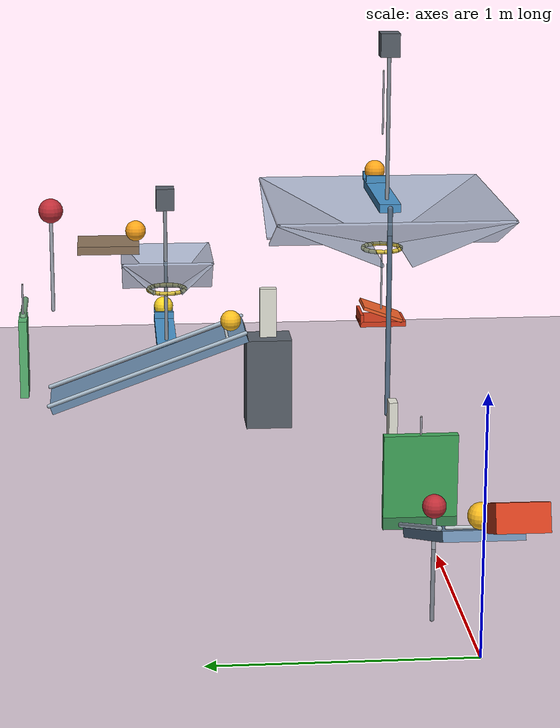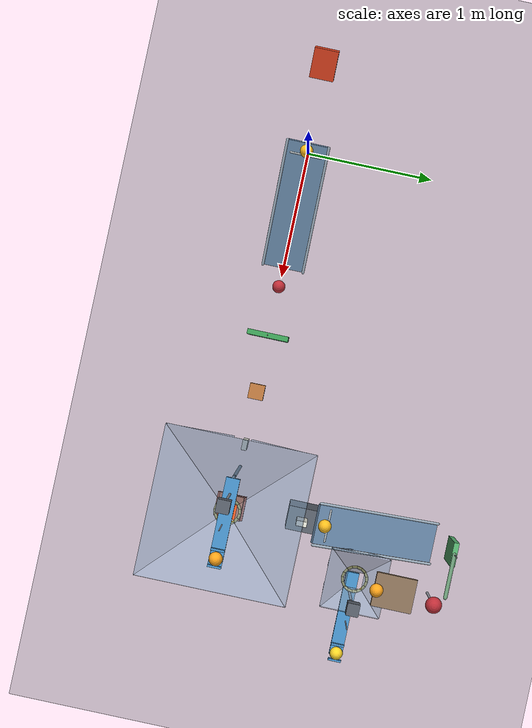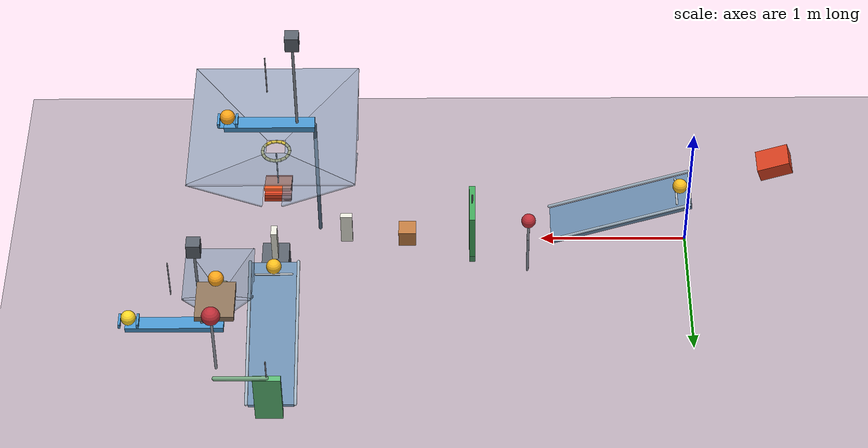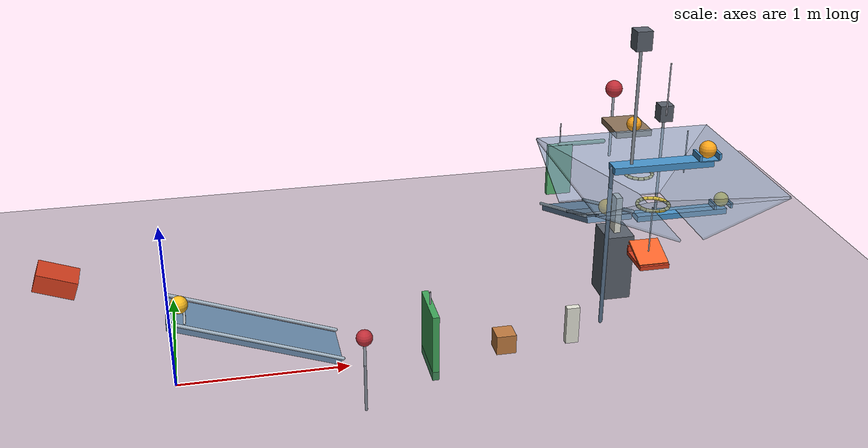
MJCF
<mujoco model="passive_chain_reaction_revised">
  <compiler angle="degree" autolimits="true"/>
  <option timestep="0.002" gravity="0 0 -9.81" integrator="implicitfast" solver="Newton" iterations="100" cone="elliptic"/>
  <size njmax="4000" nconmax="1000"/>
  <visual>
    <global azimuth="120" elevation="-25"/>
    <headlight ambient="0.35 0.35 0.35" diffuse="0.7 0.7 0.7" specular="0.2 0.2 0.2"/>
  </visual>

  <!-- All initial generalized velocities are zero. -->
  <!-- Contact damping approximates restitution 0.05, rather than imposing an exact coefficient. -->
  <!-- Hinged mechanisms use collision bit 2 and do not collide with the floor. -->
  <!-- Passive compressed assist springs have zero driving moment or axial force at the start. -->

  <worldbody>
    <light name="main_light" pos="2 -3 6" dir="0 0.3 -1" directional="true"/>
    <camera name="overview" pos="2 -6 4" xyaxes="1 0 0 0 0.447214 0.894427" fovy="48"/>
    <geom name="floor" type="plane" size="6 6 0.1" friction="0.68 0.005 0.001" condim="6" solref="0.006 0.6901" contype="1" conaffinity="1" rgba="0.22 0.25 0.28 1"/>

    <!-- Downhill axial slide supplies gravitational work in addition to the specified spring. -->
    <body name="cart1" pos="-0.556111 0 0.747637" quat="0.984807753 0 0.173648178 0">
      <joint name="cart1_slide" type="slide" axis="1 0 0" damping="0.20" stiffness="18" springref="0.20" range="0 0.55" solreflimit="0.006 1"/>
      <geom name="cart1_box" type="box" size="0.11 0.09 0.05" mass="0.50" friction="0.68 0.005 0.001" condim="6" solref="0.006 0.6901" contype="3" conaffinity="3" rgba="0.85 0.25 0.12 1"/>
    </body>

    <body name="ball1" pos="0.064086 0 0.521904">
      <freejoint name="ball1_free"/>
      <geom name="ball1_sphere" type="sphere" size="0.05" mass="0.20" friction="0.68 0.005 0.001" condim="6" solref="0.006 0.6901" contype="3" conaffinity="3" rgba="1 0.75 0.12 1"/>
    </body>

    <!-- Top endpoints: (0,0,0.492020) and (0.939693,0,0.150000). -->
    <body name="ramp1" pos="0.463006 0 0.302216" quat="0.984807753 0 0.173648178 0">
      <geom name="ramp1_deck" type="box" size="0.50 0.15 0.02" friction="0.68 0.005 0.001" condim="6" solref="0.006 0.6901" contype="1" conaffinity="1" rgba="0.42 0.55 0.68 1"/>
      <geom name="ramp1_left_rail" type="capsule" fromto="-0.50 -0.16 0.03 0.50 -0.16 0.03" size="0.01" friction="0.68 0.005 0.001" condim="6" solref="0.006 0.6901" contype="1" conaffinity="1" rgba="0.65 0.72 0.78 1"/>
      <geom name="ramp1_right_rail" type="capsule" fromto="-0.50 0.16 0.03 0.50 0.16 0.03" size="0.01" friction="0.68 0.005 0.001" condim="6" solref="0.006 0.6901" contype="1" conaffinity="1" rgba="0.65 0.72 0.78 1"/>
    </body>

    <!-- The retaining bar can withdraw into the deck under impact. -->
    <body name="ball1_release_gate" pos="0.087992 0 0.470635" quat="0.984807753 0 0.173648178 0">
      <joint name="ball1_release_gate_slide" type="slide" axis="0 0 -1" damping="0.20" stiffness="40" springref="-0.05" range="0 0.04" solreflimit="0.006 1"/>
      <geom name="ball1_release_gate_bar" type="capsule" fromto="0 -0.12 0 0 0.12 0" size="0.007" mass="0.02" friction="0.68 0.005 0.001" condim="6" solref="0.006 0.6901" contype="2" conaffinity="2" rgba="0.75 0.78 0.80 1"/>
    </body>

    <body name="pendulum1" pos="1.089693 0 -0.32">
      <joint name="pendulum1_hinge" type="hinge" axis="0 1 0" damping="0.04" frictionloss="0.001" range="0 40" solreflimit="0.006 1"/>
      <geom name="pendulum1_rod" type="capsule" fromto="0 0 0 0 0 0.50" size="0.009" mass="0.05" friction="0.68 0.005 0.001" condim="6" solref="0.006 0.6901" contype="2" conaffinity="2" rgba="0.65 0.67 0.72 1"/>
      <geom name="pendulum1_bob" type="sphere" pos="0 0 0.50" size="0.05" mass="0.30" friction="0.68 0.005 0.001" condim="6" solref="0.006 0.6901" contype="2" conaffinity="2" rgba="0.75 0.18 0.22 1"/>
    </body>

    <body name="door1" pos="1.48 0 -0.06">
      <joint name="door1_hinge" type="hinge" axis="0 1 0" damping="0.04" frictionloss="0.01" range="0 70" solreflimit="0.006 1"/>
      <geom name="door1_panel" type="box" pos="0 0 0.21" size="0.02 0.16 0.21" mass="0.45" friction="0.68 0.005 0.001" condim="6" solref="0.006 0.6901" contype="2" conaffinity="2" rgba="0.25 0.65 0.35 1"/>
      <site name="door1_spring_attachment" pos="0 0 0.20" size="0.004" rgba="0.9 0.9 0.9 1"/>
    </body>

    <body name="door1_spring_anchor" pos="1.48 0 0.44">
      <site name="door1_spring_fixed" pos="0 0 0" size="0.004" rgba="0.9 0.9 0.9 1"/>
    </body>

    <body name="block1" pos="1.93 0 0.06">
      <freejoint name="block1_free"/>
      <geom name="block1_cube" type="box" size="0.06 0.06 0.06" mass="0.35" friction="0.68 0.005 0.001" condim="6" solref="0.006 0.6901" contype="3" conaffinity="3" rgba="0.75 0.48 0.25 1"/>
    </body>

    <body name="domino1" pos="2.35 0 0.12">
      <freejoint name="domino1_free"/>
      <geom name="domino1_box" type="box" size="0.04 0.02 0.12" mass="0.25" friction="0.68 0.005 0.001" condim="6" solref="0.006 0.6901" contype="3" conaffinity="3" rgba="0.90 0.90 0.85 1"/>
    </body>

    <!-- A low striker connects the elevated lever's left end to domino1. -->
    <!-- The inertial mass includes the beam, striker and balance assembly. -->
    <body name="lever1" pos="2.83 0 1.12">
      <inertial pos="-0.11 0 0.45" mass="0.50" diaginertia="0.070 0.078 0.010"/>
      <joint name="lever1_hinge" type="hinge" axis="0 -1 0" damping="0.04" frictionloss="0.03" range="0 45" solreflimit="0.006 1"/>
      <geom name="lever1_beam" type="box" size="0.30 0.05 0.02" contype="0" conaffinity="0" rgba="0.28 0.58 0.80 1"/>
      <geom name="lever1_low_striker" type="capsule" fromto="-0.30 0 -1.00 -0.30 0 0" size="0.012" friction="0.68 0.005 0.001" condim="6" solref="0.006 0.6901" contype="2" conaffinity="2" rgba="0.35 0.45 0.55 1"/>
      <geom name="lever1_weight_stem" type="capsule" fromto="-0.183333 0 0 -0.183333 0 0.75" size="0.009" contype="0" conaffinity="0" rgba="0.55 0.58 0.62 1"/>
      <geom name="lever1_balance_weight" type="box" pos="-0.183333 0 0.75" size="0.045 0.045 0.055" contype="0" conaffinity="0" rgba="0.35 0.38 0.42 1"/>
      <geom name="lever1_cradle_floor" type="box" pos="0.275 0 0.017" size="0.06 0.05 0.003" friction="0.68 0.005 0.001" condim="6" solref="0.006 0.6901" contype="2" conaffinity="2" rgba="0.28 0.58 0.80 1"/>
      <geom name="lever1_cup_left" type="box" pos="0.215 0 0.0375" size="0.0075 0.05 0.0175" friction="0.68 0.005 0.001" condim="6" solref="0.006 0.6901" contype="2" conaffinity="2" rgba="0.28 0.58 0.80 1"/>
      <geom name="lever1_cup_right" type="box" pos="0.335 0 0.0375" size="0.0075 0.05 0.0175" friction="0.68 0.005 0.001" condim="6" solref="0.006 0.6901" contype="2" conaffinity="2" rgba="0.28 0.58 0.80 1"/>
      <site name="lever1_spring_attachment" pos="0 0 0.30" size="0.004" rgba="0.9 0.9 0.9 1"/>
    </body>

    <body name="lever1_spring_anchor" pos="2.83 0 1.72">
      <site name="lever1_spring_fixed" pos="0 0 0" size="0.004" rgba="0.9 0.9 0.9 1"/>
    </body>

    <body name="ball2" pos="3.105 0 1.19">
      <freejoint name="ball2_free"/>
      <geom name="ball2_sphere" type="sphere" size="0.05" mass="0.20" friction="0.68 0.005 0.001" condim="6" solref="0.006 0.6901" contype="3" conaffinity="3" rgba="1 0.65 0.10 1"/>
    </body>

    <!-- Broad passive catcher accommodates variation in the launch trajectory. -->
    <body name="ball2_funnel" pos="2.80 0 1.01">
      <geom name="ball2_funnel_px" type="box" pos="0.3075 0 0" euler="0 -22.414 0" size="0.26231 0.55 0.006" friction="0.68 0.005 0.001" condim="6" solref="0.006 0.6901" contype="1" conaffinity="1" rgba="0.48 0.58 0.68 0.65"/>
      <geom name="ball2_funnel_nx" type="box" pos="-0.3075 0 0" euler="0 22.414 0" size="0.26231 0.55 0.006" friction="0.68 0.005 0.001" condim="6" solref="0.006 0.6901" contype="1" conaffinity="1" rgba="0.48 0.58 0.68 0.65"/>
      <geom name="ball2_funnel_py" type="box" pos="0 0.3075 0" euler="22.414 0 0" size="0.55 0.26231 0.006" friction="0.68 0.005 0.001" condim="6" solref="0.006 0.6901" contype="1" conaffinity="1" rgba="0.48 0.58 0.68 0.65"/>
      <geom name="ball2_funnel_ny" type="box" pos="0 -0.3075 0" euler="-22.414 0 0" size="0.55 0.26231 0.006" friction="0.68 0.005 0.001" condim="6" solref="0.006 0.6901" contype="1" conaffinity="1" rgba="0.48 0.58 0.68 0.65"/>
    </body>

    <!-- Capsule chord apothem 0.09 m minus capsule radius 0.01 m gives 0.16 m clearance. -->
    <body name="ring1" pos="2.80 0 0.87">
      <geom name="ring1_s00" type="capsule" fromto="0.091765 0 0 0.084780 0.035116 0" size="0.01" friction="0.68 0.005 0.001" condim="6" solref="0.006 0.6901" contype="1" conaffinity="1" rgba="0.85 0.75 0.25 1"/>
      <geom name="ring1_s01" type="capsule" fromto="0.084780 0.035116 0 0.064888 0.064888 0" size="0.01" friction="0.68 0.005 0.001" condim="6" solref="0.006 0.6901" contype="1" conaffinity="1" rgba="0.85 0.75 0.25 1"/>
      <geom name="ring1_s02" type="capsule" fromto="0.064888 0.064888 0 0.035116 0.084780 0" size="0.01" friction="0.68 0.005 0.001" condim="6" solref="0.006 0.6901" contype="1" conaffinity="1" rgba="0.85 0.75 0.25 1"/>
      <geom name="ring1_s03" type="capsule" fromto="0.035116 0.084780 0 0 0.091765 0" size="0.01" friction="0.68 0.005 0.001" condim="6" solref="0.006 0.6901" contype="1" conaffinity="1" rgba="0.85 0.75 0.25 1"/>
      <geom name="ring1_s04" type="capsule" fromto="0 0.091765 0 -0.035116 0.084780 0" size="0.01" friction="0.68 0.005 0.001" condim="6" solref="0.006 0.6901" contype="1" conaffinity="1" rgba="0.85 0.75 0.25 1"/>
      <geom name="ring1_s05" type="capsule" fromto="-0.035116 0.084780 0 -0.064888 0.064888 0" size="0.01" friction="0.68 0.005 0.001" condim="6" solref="0.006 0.6901" contype="1" conaffinity="1" rgba="0.85 0.75 0.25 1"/>
      <geom name="ring1_s06" type="capsule" fromto="-0.064888 0.064888 0 -0.084780 0.035116 0" size="0.01" friction="0.68 0.005 0.001" condim="6" solref="0.006 0.6901" contype="1" conaffinity="1" rgba="0.85 0.75 0.25 1"/>
      <geom name="ring1_s07" type="capsule" fromto="-0.084780 0.035116 0 -0.091765 0 0" size="0.01" friction="0.68 0.005 0.001" condim="6" solref="0.006 0.6901" contype="1" conaffinity="1" rgba="0.85 0.75 0.25 1"/>
      <geom name="ring1_s08" type="capsule" fromto="-0.091765 0 0 -0.084780 -0.035116 0" size="0.01" friction="0.68 0.005 0.001" condim="6" solref="0.006 0.6901" contype="1" conaffinity="1" rgba="0.85 0.75 0.25 1"/>
      <geom name="ring1_s09" type="capsule" fromto="-0.084780 -0.035116 0 -0.064888 -0.064888 0" size="0.01" friction="0.68 0.005 0.001" condim="6" solref="0.006 0.6901" contype="1" conaffinity="1" rgba="0.85 0.75 0.25 1"/>
      <geom name="ring1_s10" type="capsule" fromto="-0.064888 -0.064888 0 -0.035116 -0.084780 0" size="0.01" friction="0.68 0.005 0.001" condim="6" solref="0.006 0.6901" contype="1" conaffinity="1" rgba="0.85 0.75 0.25 1"/>
      <geom name="ring1_s11" type="capsule" fromto="-0.035116 -0.084780 0 0 -0.091765 0" size="0.01" friction="0.68 0.005 0.001" condim="6" solref="0.006 0.6901" contype="1" conaffinity="1" rgba="0.85 0.75 0.25 1"/>
      <geom name="ring1_s12" type="capsule" fromto="0 -0.091765 0 0.035116 -0.084780 0" size="0.01" friction="0.68 0.005 0.001" condim="6" solref="0.006 0.6901" contype="1" conaffinity="1" rgba="0.85 0.75 0.25 1"/>
      <geom name="ring1_s13" type="capsule" fromto="0.035116 -0.084780 0 0.064888 -0.064888 0" size="0.01" friction="0.68 0.005 0.001" condim="6" solref="0.006 0.6901" contype="1" conaffinity="1" rgba="0.85 0.75 0.25 1"/>
      <geom name="ring1_s14" type="capsule" fromto="0.064888 -0.064888 0 0.084780 -0.035116 0" size="0.01" friction="0.68 0.005 0.001" condim="6" solref="0.006 0.6901" contype="1" conaffinity="1" rgba="0.85 0.75 0.25 1"/>
      <geom name="ring1_s15" type="capsule" fromto="0.084780 -0.035116 0 0.091765 0 0" size="0.01" friction="0.68 0.005 0.001" condim="6" solref="0.006 0.6901" contype="1" conaffinity="1" rgba="0.85 0.75 0.25 1"/>
    </body>

    <!-- The inclined top converts a downward impact into +y cart motion. -->
    <body name="cart2" pos="2.80 0 0.55006" quat="0.707106781 0 0 0.707106781">
      <inertial pos="0 0 0" mass="0.50" diaginertia="0.001767 0.002433 0.003367"/>
      <joint name="cart2_slide" type="slide" axis="1 0 0" damping="0.20" frictionloss="0.01" range="0 0.46" solreflimit="0.006 1"/>
      <geom name="cart2_base" type="box" pos="0 0 -0.0375" size="0.11 0.09 0.0125" friction="0.68 0.005 0.001" condim="6" solref="0.006 0.6901" contype="3" conaffinity="3" rgba="0.85 0.25 0.12 1"/>
      <geom name="cart2_impact_top" type="box" pos="0 0 0.00875" euler="0 -20 0" size="0.10 0.09 0.0075" friction="0.68 0.005 0.001" condim="6" solref="0.006 0.6901" contype="3" conaffinity="3" rgba="0.95 0.38 0.16 1"/>
      <geom name="cart2_front" type="box" pos="0.1025 0 -0.015" size="0.0075 0.09 0.025" friction="0.68 0.005 0.001" condim="6" solref="0.006 0.6901" contype="3" conaffinity="3" rgba="0.85 0.25 0.12 1"/>
      <site name="cart2_spring_attachment" pos="0 0 0" size="0.004" rgba="0.9 0.9 0.9 1"/>
    </body>

    <body name="cart2_spring_anchor" pos="2.80 0 0.85006">
      <site name="cart2_spring_fixed" pos="0 0 0" size="0.004" rgba="0.9 0.9 0.9 1"/>
    </body>

    <body name="domino2_support" pos="2.80 0.55 0.22">
      <geom name="domino2_support_box" type="box" size="0.09 0.11 0.22" friction="0.68 0.005 0.001" condim="6" solref="0.006 0.6901" contype="1" conaffinity="1" rgba="0.35 0.38 0.42 1"/>
    </body>

    <body name="domino2" pos="2.80 0.55 0.56" quat="0.707106781 0 0 0.707106781">
      <freejoint name="domino2_free"/>
      <geom name="domino2_box" type="box" size="0.04 0.02 0.12" mass="0.25" friction="0.68 0.005 0.001" condim="6" solref="0.006 0.6901" contype="3" conaffinity="3" rgba="0.90 0.90 0.85 1"/>
    </body>

    <body name="ball3" pos="2.80 0.73 0.521904">
      <freejoint name="ball3_free"/>
      <geom name="ball3_sphere" type="sphere" size="0.05" mass="0.20" friction="0.68 0.005 0.001" condim="6" solref="0.006 0.6901" contype="3" conaffinity="3" rgba="1 0.75 0.12 1"/>
    </body>

    <body name="ramp2" pos="2.80 1.128920 0.302216" quat="0.696364240 -0.122787804 0.122787804 0.696364240">
      <geom name="ramp2_deck" type="box" size="0.50 0.15 0.02" friction="0.68 0.005 0.001" condim="6" solref="0.006 0.6901" contype="1" conaffinity="1" rgba="0.42 0.55 0.68 1"/>
      <geom name="ramp2_left_rail" type="capsule" fromto="-0.50 -0.16 0.03 0.50 -0.16 0.03" size="0.01" friction="0.68 0.005 0.001" condim="6" solref="0.006 0.6901" contype="1" conaffinity="1" rgba="0.65 0.72 0.78 1"/>
      <geom name="ramp2_right_rail" type="capsule" fromto="-0.50 0.16 0.03 0.50 0.16 0.03" size="0.01" friction="0.68 0.005 0.001" condim="6" solref="0.006 0.6901" contype="1" conaffinity="1" rgba="0.65 0.72 0.78 1"/>
    </body>

    <body name="ball3_release_gate" pos="2.80 0.753906 0.470635" quat="0.696364240 -0.122787804 0.122787804 0.696364240">
      <joint name="ball3_release_gate_slide" type="slide" axis="0 0 -1" damping="0.20" stiffness="40" springref="-0.05" range="0 0.04" solreflimit="0.006 1"/>
      <geom name="ball3_release_gate_bar" type="capsule" fromto="0 -0.12 0 0 0.12 0" size="0.007" mass="0.02" friction="0.68 0.005 0.001" condim="6" solref="0.006 0.6901" contype="2" conaffinity="2" rgba="0.75 0.78 0.80 1"/>
    </body>

    <body name="flap1" pos="2.80 1.725607 0.37">
      <inertial pos="0 0 0.035" mass="0.28" diaginertia="0.00345 0.00415 0.00080"/>
      <joint name="flap1_hinge" type="hinge" axis="1 0 0" damping="0.04" frictionloss="0.005" range="0 60" solreflimit="0.006 1"/>
      <geom name="flap1_panel" type="box" size="0.09 0.02 0.19" friction="0.68 0.005 0.001" condim="6" solref="0.006 0.6901" contype="2" conaffinity="2" rgba="0.35 0.72 0.45 1"/>
      <geom name="flap1_lateral_striker" type="capsule" fromto="0 0 0.19 0.33 0 0.19" size="0.015" friction="0.68 0.005 0.001" condim="6" solref="0.006 0.6901" contype="2" conaffinity="2" rgba="0.45 0.65 0.50 1"/>
      <site name="flap1_spring_attachment" pos="0 0 0.15" size="0.004" rgba="0.9 0.9 0.9 1"/>
    </body>

    <body name="flap1_spring_anchor" pos="2.80 1.725607 0.72">
      <site name="flap1_spring_fixed" pos="0 0 0" size="0.004" rgba="0.9 0.9 0.9 1"/>
    </body>

    <body name="pendulum2" pos="3.13 1.59 0.505995">
      <joint name="pendulum2_hinge" type="hinge" axis="1 0 0" damping="0.04" frictionloss="0.001" range="0 38" solreflimit="0.006 1"/>
      <geom name="pendulum2_rod" type="capsule" fromto="0 0 0 0 0 0.50" size="0.009" mass="0.05" friction="0.68 0.005 0.001" condim="6" solref="0.006 0.6901" contype="2" conaffinity="2" rgba="0.65 0.67 0.72 1"/>
      <geom name="pendulum2_bob" type="sphere" pos="0 0 0.50" size="0.06" mass="0.30" friction="0.68 0.005 0.001" condim="6" solref="0.006 0.6901" contype="2" conaffinity="2" rgba="0.75 0.18 0.22 1"/>
    </body>

    <body name="shelf1" pos="3.13 1.312169 0.83">
      <geom name="shelf1_deck" type="box" size="0.125 0.15 0.02" friction="0.68 0.005 0.001" condim="6" solref="0.006 0.6901" contype="1" conaffinity="1" rgba="0.55 0.45 0.35 1"/>
    </body>

    <body name="ball4" pos="3.13 1.177169 0.90">
      <freejoint name="ball4_free"/>
      <geom name="ball4_sphere" type="sphere" size="0.05" mass="0.20" friction="0.68 0.005 0.001" condim="6" solref="0.006 0.6901" contype="3" conaffinity="3" rgba="1 0.65 0.10 1"/>
    </body>

    <body name="ball4_funnel" pos="3.13 1.027169 0.705">
      <geom name="ball4_funnel_px" type="box" pos="0.1425 0 0" euler="0 -44.061 0" size="0.10785 0.22 0.006" friction="0.68 0.005 0.001" condim="6" solref="0.006 0.6901" contype="1" conaffinity="1" rgba="0.48 0.58 0.68 0.65"/>
      <geom name="ball4_funnel_nx" type="box" pos="-0.1425 0 0" euler="0 44.061 0" size="0.10785 0.22 0.006" friction="0.68 0.005 0.001" condim="6" solref="0.006 0.6901" contype="1" conaffinity="1" rgba="0.48 0.58 0.68 0.65"/>
      <geom name="ball4_funnel_py" type="box" pos="0 0.1425 0" euler="44.061 0 0" size="0.22 0.10785 0.006" friction="0.68 0.005 0.001" condim="6" solref="0.006 0.6901" contype="1" conaffinity="1" rgba="0.48 0.58 0.68 0.65"/>
      <geom name="ball4_funnel_ny" type="box" pos="0 -0.1425 0" euler="-44.061 0 0" size="0.22 0.10785 0.006" friction="0.68 0.005 0.001" condim="6" solref="0.006 0.6901" contype="1" conaffinity="1" rgba="0.48 0.58 0.68 0.65"/>
    </body>

    <body name="ring2" pos="3.13 1.027169 0.60">
      <geom name="ring2_s00" type="capsule" fromto="0.091765 0 0 0.084780 0.035116 0" size="0.01" friction="0.68 0.005 0.001" condim="6" solref="0.006 0.6901" contype="1" conaffinity="1" rgba="0.85 0.75 0.25 1"/>
      <geom name="ring2_s01" type="capsule" fromto="0.084780 0.035116 0 0.064888 0.064888 0" size="0.01" friction="0.68 0.005 0.001" condim="6" solref="0.006 0.6901" contype="1" conaffinity="1" rgba="0.85 0.75 0.25 1"/>
      <geom name="ring2_s02" type="capsule" fromto="0.064888 0.064888 0 0.035116 0.084780 0" size="0.01" friction="0.68 0.005 0.001" condim="6" solref="0.006 0.6901" contype="1" conaffinity="1" rgba="0.85 0.75 0.25 1"/>
      <geom name="ring2_s03" type="capsule" fromto="0.035116 0.084780 0 0 0.091765 0" size="0.01" friction="0.68 0.005 0.001" condim="6" solref="0.006 0.6901" contype="1" conaffinity="1" rgba="0.85 0.75 0.25 1"/>
      <geom name="ring2_s04" type="capsule" fromto="0 0.091765 0 -0.035116 0.084780 0" size="0.01" friction="0.68 0.005 0.001" condim="6" solref="0.006 0.6901" contype="1" conaffinity="1" rgba="0.85 0.75 0.25 1"/>
      <geom name="ring2_s05" type="capsule" fromto="-0.035116 0.084780 0 -0.064888 0.064888 0" size="0.01" friction="0.68 0.005 0.001" condim="6" solref="0.006 0.6901" contype="1" conaffinity="1" rgba="0.85 0.75 0.25 1"/>
      <geom name="ring2_s06" type="capsule" fromto="-0.064888 0.064888 0 -0.084780 0.035116 0" size="0.01" friction="0.68 0.005 0.001" condim="6" solref="0.006 0.6901" contype="1" conaffinity="1" rgba="0.85 0.75 0.25 1"/>
      <geom name="ring2_s07" type="capsule" fromto="-0.084780 0.035116 0 -0.091765 0 0" size="0.01" friction="0.68 0.005 0.001" condim="6" solref="0.006 0.6901" contype="1" conaffinity="1" rgba="0.85 0.75 0.25 1"/>
      <geom name="ring2_s08" type="capsule" fromto="-0.091765 0 0 -0.084780 -0.035116 0" size="0.01" friction="0.68 0.005 0.001" condim="6" solref="0.006 0.6901" contype="1" conaffinity="1" rgba="0.85 0.75 0.25 1"/>
      <geom name="ring2_s09" type="capsule" fromto="-0.084780 -0.035116 0 -0.064888 -0.064888 0" size="0.01" friction="0.68 0.005 0.001" condim="6" solref="0.006 0.6901" contype="1" conaffinity="1" rgba="0.85 0.75 0.25 1"/>
      <geom name="ring2_s10" type="capsule" fromto="-0.064888 -0.064888 0 -0.035116 -0.084780 0" size="0.01" friction="0.68 0.005 0.001" condim="6" solref="0.006 0.6901" contype="1" conaffinity="1" rgba="0.85 0.75 0.25 1"/>
      <geom name="ring2_s11" type="capsule" fromto="-0.035116 -0.084780 0 0 -0.091765 0" size="0.01" friction="0.68 0.005 0.001" condim="6" solref="0.006 0.6901" contype="1" conaffinity="1" rgba="0.85 0.75 0.25 1"/>
      <geom name="ring2_s12" type="capsule" fromto="0 -0.091765 0 0.035116 -0.084780 0" size="0.01" friction="0.68 0.005 0.001" condim="6" solref="0.006 0.6901" contype="1" conaffinity="1" rgba="0.85 0.75 0.25 1"/>
      <geom name="ring2_s13" type="capsule" fromto="0.035116 -0.084780 0 0.064888 -0.064888 0" size="0.01" friction="0.68 0.005 0.001" condim="6" solref="0.006 0.6901" contype="1" conaffinity="1" rgba="0.85 0.75 0.25 1"/>
      <geom name="ring2_s14" type="capsule" fromto="0.064888 -0.064888 0 0.084780 -0.035116 0" size="0.01" friction="0.68 0.005 0.001" condim="6" solref="0.006 0.6901" contype="1" conaffinity="1" rgba="0.85 0.75 0.25 1"/>
      <geom name="ring2_s15" type="capsule" fromto="0.084780 -0.035116 0 0.091765 0 0" size="0.01" friction="0.68 0.005 0.001" condim="6" solref="0.006 0.6901" contype="1" conaffinity="1" rgba="0.85 0.75 0.25 1"/>
    </body>

    <body name="seesaw1" pos="3.455 1.027169 0.28">
      <inertial pos="-0.109090909 0 0.45" mass="0.55" diaginertia="0.075 0.085 0.012"/>
      <joint name="seesaw1_hinge" type="hinge" axis="0 -1 0" damping="0.04" frictionloss="0.03" range="0 42" solreflimit="0.006 1"/>
      <geom name="seesaw1_beam" type="box" size="0.325 0.05 0.02" friction="0.68 0.005 0.001" condim="6" solref="0.006 0.6901" contype="2" conaffinity="2" rgba="0.28 0.58 0.80 1"/>
      <geom name="seesaw1_weight_stem" type="capsule" fromto="-0.181818 0 0 -0.181818 0 0.75" size="0.009" contype="0" conaffinity="0" rgba="0.55 0.58 0.62 1"/>
      <geom name="seesaw1_balance_weight" type="box" pos="-0.181818 0 0.75" size="0.045 0.045 0.055" contype="0" conaffinity="0" rgba="0.35 0.38 0.42 1"/>
      <geom name="seesaw1_cup_left" type="box" pos="0.24 0 0.0375" size="0.0075 0.05 0.0175" friction="0.68 0.005 0.001" condim="6" solref="0.006 0.6901" contype="2" conaffinity="2" rgba="0.28 0.58 0.80 1"/>
      <geom name="seesaw1_cup_right" type="box" pos="0.36 0 0.0375" size="0.0075 0.05 0.0175" friction="0.68 0.005 0.001" condim="6" solref="0.006 0.6901" contype="2" conaffinity="2" rgba="0.28 0.58 0.80 1"/>
      <site name="seesaw1_spring_attachment" pos="0 0 0.30" size="0.004" rgba="0.9 0.9 0.9 1"/>
    </body>

    <body name="seesaw1_spring_anchor" pos="3.455 1.027169 0.88">
      <site name="seesaw1_spring_fixed" pos="0 0 0" size="0.004" rgba="0.9 0.9 0.9 1"/>
    </body>

    <body name="ball5" pos="3.755 1.027169 0.35">
      <freejoint name="ball5_free"/>
      <geom name="ball5_sphere" type="sphere" size="0.05" mass="0.20" friction="0.68 0.005 0.001" condim="6" solref="0.006 0.6901" contype="3" conaffinity="3" rgba="1 0.85 0.15 1"/>
    </body>
  </worldbody>

  <tendon>
    <spatial name="door1_assist_spring" stiffness="180" damping="0" springlength="0.55" width="0.004" rgba="0.65 0.65 0.70 1">
      <site site="door1_spring_fixed"/>
      <site site="door1_spring_attachment"/>
    </spatial>
    <spatial name="lever1_assist_spring" stiffness="45" damping="0" springlength="0.60" width="0.004" rgba="0.65 0.65 0.70 1">
      <site site="lever1_spring_fixed"/>
      <site site="lever1_spring_attachment"/>
    </spatial>
    <spatial name="cart2_assist_spring" stiffness="15" damping="0" springlength="0.65" width="0.004" rgba="0.65 0.65 0.70 1">
      <site site="cart2_spring_fixed"/>
      <site site="cart2_spring_attachment"/>
    </spatial>
    <spatial name="flap1_assist_spring" stiffness="30" damping="0" springlength="0.40" width="0.004" rgba="0.65 0.65 0.70 1">
      <site site="flap1_spring_fixed"/>
      <site site="flap1_spring_attachment"/>
    </spatial>
    <spatial name="seesaw1_assist_spring" stiffness="40" damping="0" springlength="0.60" width="0.004" rgba="0.65 0.65 0.70 1">
      <site site="seesaw1_spring_fixed"/>
      <site site="seesaw1_spring_attachment"/>
    </spatial>
  </tendon>

  <keyframe>
    <key name="start" time="0"/>
  </keyframe>
</mujoco>
